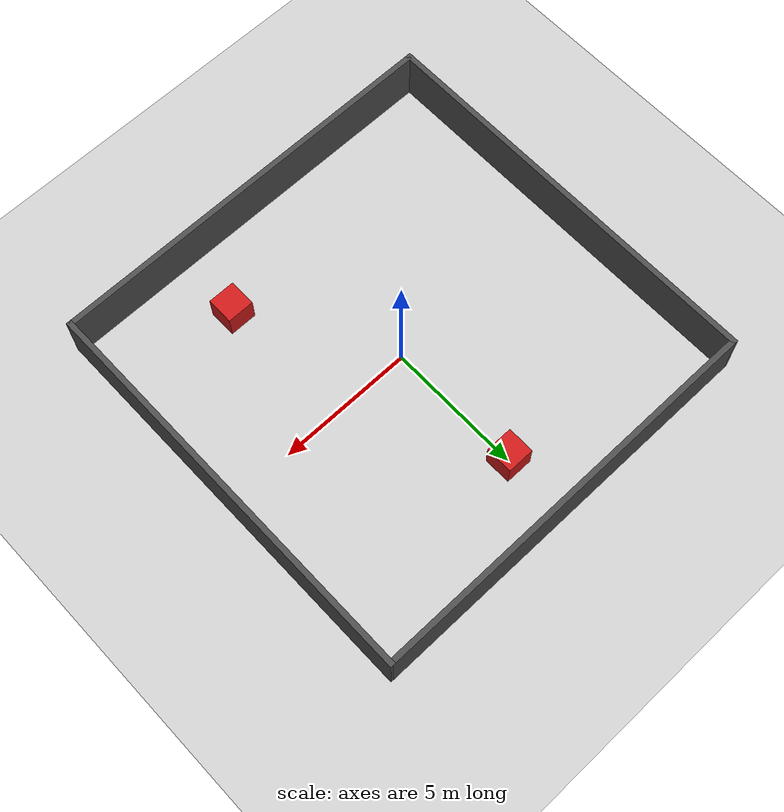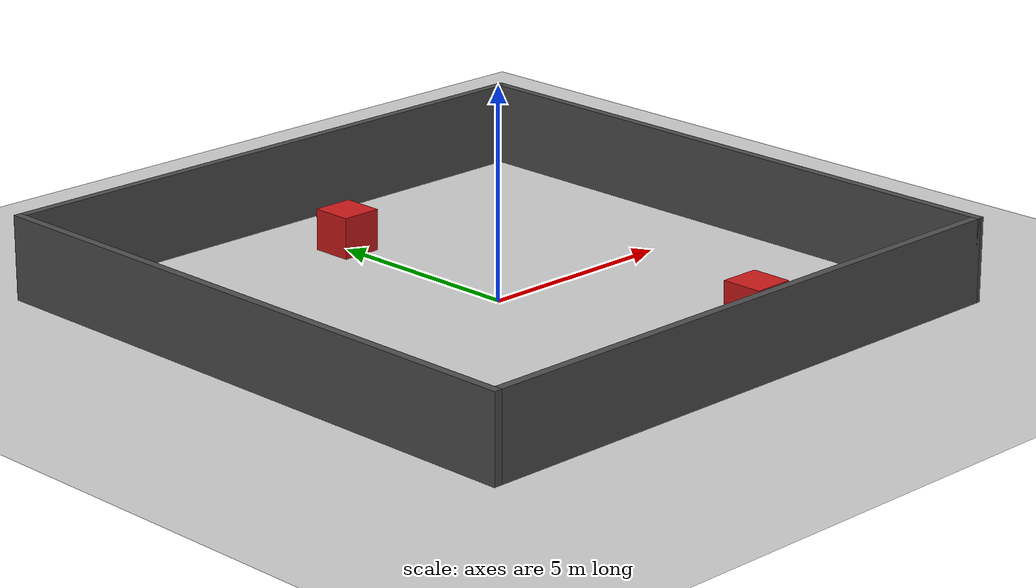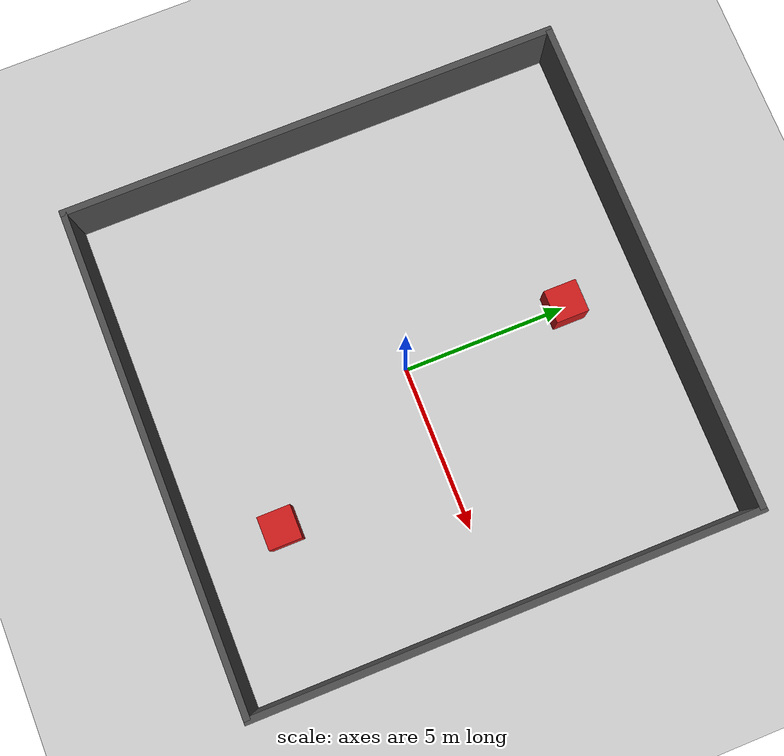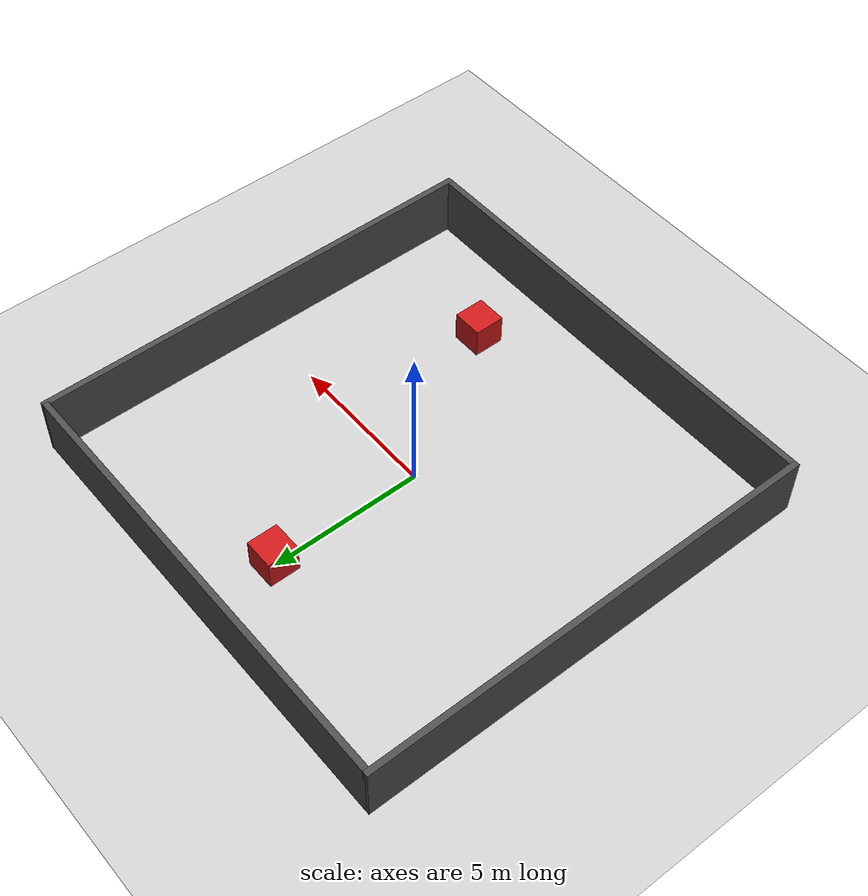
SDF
<?xml version="1.0" ?>
<sdf version="1.8">
  <world name="my_custom_world">

    <plugin filename="gz-sim-physics-system" name="gz::sim::systems::Physics"/>
    <plugin filename="gz-sim-user-commands-system" name="gz::sim::systems::UserCommands"/>
    <plugin filename="gz-sim-scene-broadcaster-system" name="gz::sim::systems::SceneBroadcaster"/>
    <plugin filename="gz-sim-sensors-system" name="gz::sim::systems::Sensors">
      <render_engine>ogre2</render_engine>
    </plugin>

    <light type="directional" name="sun">
      <cast_shadows>true</cast_shadows>
      <pose>0 0 10 0 0 0</pose>
      <diffuse>0.8 0.8 0.8 1</diffuse>
      <specular>0.2 0.2 0.2 1</specular>
      <attenuation>
        <range>1000</range>
        <constant>0.9</constant>
        <linear>0.01</linear>
        <quadratic>0.001</quadratic>
      </attenuation>
      <direction>-0.5 0.1 -0.9</direction>
    </light>

    <model name="ground_plane">
      <static>true</static>
      <link name="link">
        <collision name="collision">
          <geometry><plane><normal>0 0 1</normal><size>100 100</size></plane></geometry>
        </collision>
        <visual name="visual">
          <geometry><plane><normal>0 0 1</normal><size>100 100</size></plane></geometry>
          <material>
            <ambient>0.8 0.8 0.8 1</ambient>
            <diffuse>0.8 0.8 0.8 1</diffuse>
            <specular>0.8 0.8 0.8 1</specular>
          </material>
        </visual>
      </link>
    </model>

    <model name="room_walls">
      <static>true</static> <link name="wall_front">
        <pose>7.5 0 1 0 0 0</pose> <collision name="collision">
          <geometry><box><size>0.2 15.2 2</size></box></geometry>
        </collision>
        <visual name="visual">
          <geometry><box><size>0.2 15.2 2</size></box></geometry>
          <material><ambient>0.3 0.3 0.3 1</ambient><diffuse>0.3 0.3 0.3 1</diffuse></material>
        </visual>
      </link>

      <link name="wall_back">
        <pose>-7.5 0 1 0 0 0</pose>
        <collision name="collision">
          <geometry><box><size>0.2 15.2 2</size></box></geometry>
        </collision>
        <visual name="visual">
          <geometry><box><size>0.2 15.2 2</size></box></geometry>
          <material><ambient>0.3 0.3 0.3 1</ambient><diffuse>0.3 0.3 0.3 1</diffuse></material>
        </visual>
      </link>

      <link name="wall_left">
        <pose>0 7.5 1 0 0 0</pose>
        <collision name="collision">
          <geometry><box><size>15 0.2 2</size></box></geometry>
        </collision>
        <visual name="visual">
          <geometry><box><size>15 0.2 2</size></box></geometry>
          <material><ambient>0.3 0.3 0.3 1</ambient><diffuse>0.3 0.3 0.3 1</diffuse></material>
        </visual>
      </link>

      <link name="wall_right">
        <pose>0 -7.5 1 0 0 0</pose>
        <collision name="collision">
          <geometry><box><size>15 0.2 2</size></box></geometry>
        </collision>
        <visual name="visual">
          <geometry><box><size>15 0.2 2</size></box></geometry>
          <material><ambient>0.3 0.3 0.3 1</ambient><diffuse>0.3 0.3 0.3 1</diffuse></material>
        </visual>
      </link>
    </model>

    <model name="obstacle_cube_front">
      <pose>0 5 0.5 0 0 0</pose>
      <static>false</static> <link name="link">
        <inertial>
          <mass>5.0</mass>
          <inertia ixx="0.83" ixy="0" ixz="0" iyy="0.83" iyz="0" izz="0.83"/>
        </inertial>

        <collision name="collision">
          <geometry><box><size>1 1 1</size></box></geometry>
        </collision>

        <visual name="visual">
          <geometry><box><size>1 1 1</size></box></geometry>
          <material>
            <ambient>0.8 0.1 0.1 1</ambient> <diffuse>0.8 0.1 0.1 1</diffuse>
          </material>
        </visual>
      </link>
    </model>

    <model name="obstacle_cube_back">
      <pose>3 -5 0.5 0 0 0</pose>
      <static>false</static> <link name="link">
        <inertial>
          <mass>5.0</mass>
          <inertia ixx="0.83" ixy="0" ixz="0" iyy="0.83" iyz="0" izz="0.83"/>
        </inertial>

        <collision name="collision">
          <geometry><box><size>1 1 1</size></box></geometry>
        </collision>

        <visual name="visual">
          <geometry><box><size>1 1 1</size></box></geometry>
          <material>
            <ambient>0.8 0.1 0.1 1</ambient> <diffuse>0.8 0.1 0.1 1</diffuse>
          </material>
        </visual>
      </link>
    </model>

  </world>
</sdf>
